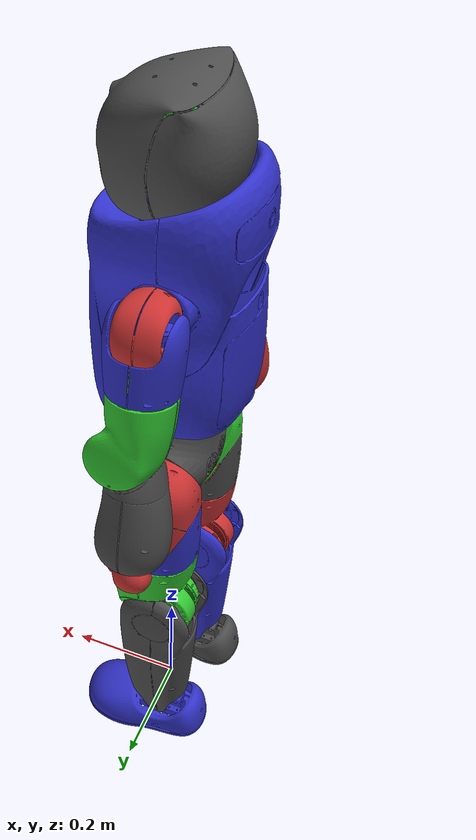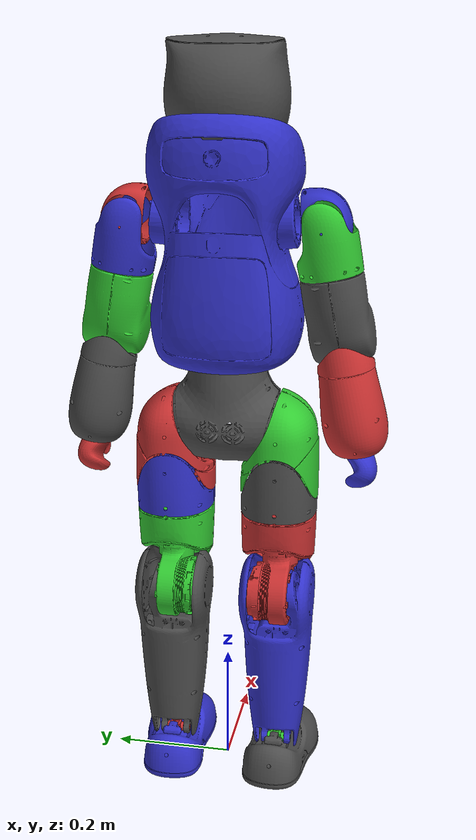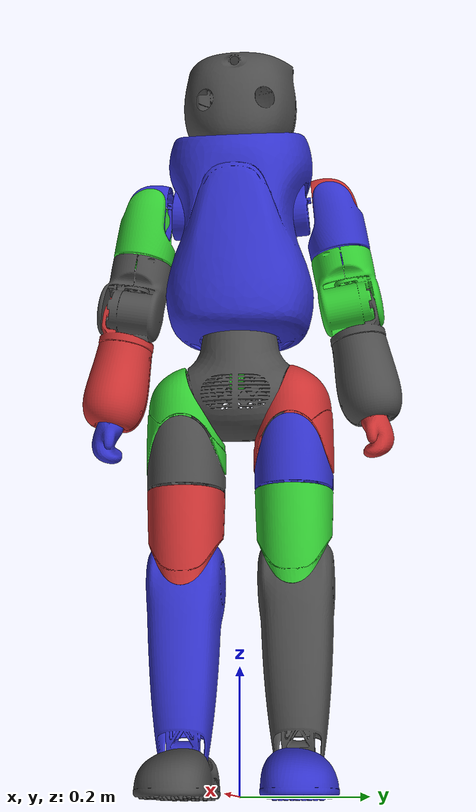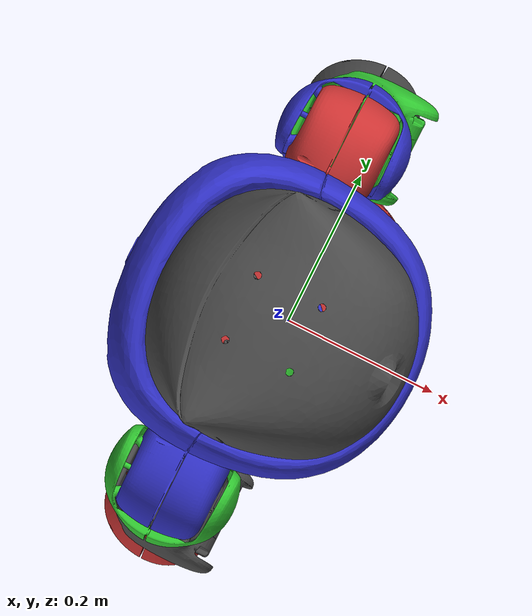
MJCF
<mujoco model="gr3miniv2_1_1">
  <compiler angle="radian" meshdir="assets" autolimits="true" />
  <option iterations="3" ls_iterations="5" timestep=".002" integrator="Euler">
    <flag eulerdamp="disable" />
  </option>
  <default>
    <joint actuatorfrclimited="true" type="hinge" />
    <default class="collision">
      <geom group="3" rgba=".2 .6 .2 .3" contype="0" conaffinity="0" />
    </default>
    <site rgba="1 0 0 1" group="5" />
  </default>
  <asset>
    <mesh name="base_link" file="base_link.STL" scale="0.001 0.001 0.001" />
    <mesh name="waist_yaw_link" file="waist_yaw_link.STL" scale="0.001 0.001 0.001" />
    <mesh name="torso_link" file="torso_link.STL" scale="0.001 0.001 0.001" />
    <mesh name="head_yaw_link" file="head_yaw_link.STL" scale="0.001 0.001 0.001" />
    <mesh name="head_pitch_link" file="head_pitch_link.STL" scale="0.001 0.001 0.001" />
    <mesh name="left_thigh_pitch_link" file="left_thigh_pitch_link.STL" scale="0.001 0.001 0.001" />
    <mesh name="left_thigh_roll_link" file="left_thigh_roll_link.STL" scale="0.001 0.001 0.001" />
    <mesh name="left_thigh_yaw_link" file="left_thigh_yaw_link.STL" scale="0.001 0.001 0.001" />
    <mesh name="left_shank_pitch_link" file="left_shank_pitch_link.STL" scale="0.001 0.001 0.001" />
    <mesh name="left_foot_pitch_link" file="left_foot_pitch_link.STL" scale="0.001 0.001 0.001" />
    <mesh name="left_foot_roll_link" file="left_foot_roll_link.STL" scale="0.001 0.001 0.001" />
    <mesh name="right_thigh_pitch_link" file="right_thigh_pitch_link.STL" scale="0.001 0.001 0.001" />
    <mesh name="right_thigh_roll_link" file="right_thigh_roll_link.STL" scale="0.001 0.001 0.001" />
    <mesh name="right_thigh_yaw_link" file="right_thigh_yaw_link.STL" scale="0.001 0.001 0.001" />
    <mesh name="right_shank_pitch_link" file="right_shank_pitch_link.STL" scale="0.001 0.001 0.001" />
    <mesh name="right_foot_pitch_link" file="right_foot_pitch_link.STL" scale="0.001 0.001 0.001" />
    <mesh name="right_foot_roll_link" file="right_foot_roll_link.STL" scale="0.001 0.001 0.001" />
    <mesh name="left_upper_arm_pitch_link" file="left_upper_arm_pitch_link.STL" scale="0.001 0.001 0.001" />
    <mesh name="left_upper_arm_roll_link" file="left_upper_arm_roll_link.STL" scale="0.001 0.001 0.001" />
    <mesh name="left_upper_arm_yaw_link" file="left_upper_arm_yaw_link.STL" scale="0.001 0.001 0.001" />
    <mesh name="left_lower_arm_pitch_link" file="left_lower_arm_pitch_link.STL" scale="0.001 0.001 0.001" />
    <mesh name="left_hand_yaw_link" file="left_hand_yaw_link.STL" scale="0.001 0.001 0.001" />
    <mesh name="right_upper_arm_pitch_link" file="right_upper_arm_pitch_link.STL" scale="0.001 0.001 0.001" />
    <mesh name="right_upper_arm_roll_link" file="right_upper_arm_roll_link.STL" scale="0.001 0.001 0.001" />
    <mesh name="right_upper_arm_yaw_link" file="right_upper_arm_yaw_link.STL" scale="0.001 0.001 0.001" />
    <mesh name="right_lower_arm_pitch_link" file="right_lower_arm_pitch_link.STL" scale="0.001 0.001 0.001" />
    <mesh name="right_hand_yaw_link" file="right_hand_yaw_link.STL" scale="0.001 0.001 0.001" />
    <mesh name="imu_link" file="imu_link.STL" scale="0.001 0.001 0.001" />
  </asset>
  <worldbody>
    <body name="base_link" pos="0 0 0.625258775">
      <freejoint name="base_free_joint" />
      <inertial pos="-0.000867228 1.14039e-05 0.0349722" quat="1 0.000427677 -0.000730479 0.000498522" mass="4.37052" diaginertia="0.0143364 0.00976865 0.00854089" />
      <geom type="mesh" contype="0" conaffinity="0" group="1" density="0" rgba="0.3 0.3 0.3 1" mesh="base_link" />
      <body name="waist_yaw_link" pos="0 0 0.129241">
        <inertial pos="0.000531023 2.89879e-06 -0.00751643" quat="-0.0686551 0.688193 0.0746872 0.7184" mass="0.594111" diaginertia="0.000356461 0.000262734 0.000258042" />
        <joint name="waist_yaw_joint" pos="0 0 0" axis="0 0 1" range="-2.2689 2.2689" actuatorfrcrange="-140 140" armature="0.029064366" damping="0.01" frictionloss="0.02" />
        <geom type="mesh" contype="0" conaffinity="0" group="1" density="0" rgba="0.8 0.2 0.2 1" mesh="waist_yaw_link" />
        <body name="torso_link">
          <inertial pos="-0.0180476 -0.000320309 0.157121" quat="0.999566 -0.0039106 -0.0290555 -0.00271946" mass="10.9101" diaginertia="0.129645 0.122568 0.0602052" />
          <geom type="mesh" contype="0" conaffinity="0" group="1" density="0" rgba="0.2 0.2 0.8 1" mesh="torso_link" />
          <body name="head_yaw_link" pos="0 0 0.3622">
            <inertial pos="-0.00010016 -0.0059295 0.02893" quat="0.999537 0.0226773 -0.00204875 0.0201909" mass="0.44228" diaginertia="0.000271521 0.000266458 5.00393e-05" />
            <joint name="head_yaw_joint" pos="0 0 0" axis="0 0 1" range="-1.3963 1.3963" actuatorfrcrange="-11 11" armature="0.0489648" damping="0.01" frictionloss="0.02" />
            <geom type="mesh" contype="0" conaffinity="0" group="1" density="0" rgba="0.2 0.8 0.2 1" mesh="head_yaw_link" />
            <body name="head_pitch_link" pos="0 0 0.042">
              <inertial pos="0.014259 -0.0012956 0.0026765" quat="0.657593 0.661463 -0.259684 0.250204" mass="0.924" diaginertia="0.00487114 0.00440671 0.00370606" />
              <joint name="head_pitch_joint" pos="0 0 0" axis="0 1 0" range="-0.5236 0.1745" actuatorfrcrange="-11 11" armature="0.0489648" damping="0.01" frictionloss="0.02" />
              <geom type="mesh" contype="0" conaffinity="0" group="1" density="0" rgba="0.3 0.3 0.3 1" mesh="head_pitch_link" />
              <geom name="head_collision" class="collision" size="0.09" pos="0 0 0.006" />
            </body>
          </body>
          <body name="left_upper_arm_pitch_link" pos="-0.023 0.105 0.212435" quat="0.999048 0.0436194 0 0">
            <inertial pos="-0.00688156 0.0273098 0.00220444" quat="0.666042 0.73023 -0.0415622 0.14637" mass="0.966407" diaginertia="0.00119942 0.00115911 0.000312168" />
            <joint name="left_shoulder_pitch_joint" pos="0 0 0" axis="0 1 0" range="-3.14159 2.70526" actuatorfrcrange="-42 42" armature="0.00884" damping="0.01" frictionloss="0.02" />
            <geom type="mesh" contype="0" conaffinity="0" group="1" density="0" rgba="0.8 0.2 0.2 1" mesh="left_upper_arm_pitch_link" />
            <body name="left_upper_arm_roll_link" pos="0 0.0483541 -0.00852613" quat="0.999048 0.0436194 0 0">
              <inertial pos="-0.0160281 0.000200678 -0.052866" quat="0.720085 0.0526754 0.0749272 0.687815" mass="1.14232" diaginertia="0.00212863 0.00195996 0.000747345" />
              <joint name="left_shoulder_roll_joint" pos="0 0 0" axis="1 0 0" range="-0.0872665 2.35619" actuatorfrcrange="-28.5 28.5" armature="0.003123788" damping="0.01" frictionloss="0.02" />
              <geom type="mesh" contype="0" conaffinity="0" group="1" density="0" rgba="0.2 0.2 0.8 1" mesh="left_upper_arm_roll_link" />
              <body name="left_upper_arm_yaw_link" pos="0 0 -0.127">
                <inertial pos="0.0105288 -0.00451627 -0.0271468" quat="0.97796 -0.0851427 -0.142054 0.127148" mass="1.06309" diaginertia="0.00162194 0.00157577 0.00074561" />
                <joint name="left_shoulder_yaw_joint" pos="0 0 0" axis="0 0 1" range="-1.8326 1.8326" actuatorfrcrange="-28.5 28.5" armature="0.003123788" damping="0.01" frictionloss="0.02" />
                <geom type="mesh" contype="0" conaffinity="0" group="1" density="0" rgba="0.2 0.8 0.2 1" mesh="left_upper_arm_yaw_link" />
                <body name="left_lower_arm_pitch_link" pos="0.02 0 -0.0493">
                  <inertial pos="-0.0144669 0.00433167 -0.0912007" quat="0.996722 -0.048495 0.0647485 -0.000888523" mass="1.24342" diaginertia="0.00530407 0.00521777 0.000853213" />
                  <joint name="left_elbow_pitch_joint" pos="0 0 0" axis="0 1 0" range="-2.18166 0" actuatorfrcrange="-28.5 28.5" armature="0.003123788" damping="0.01" frictionloss="0.02" />
                  <geom type="mesh" contype="0" conaffinity="0" group="1" density="0" rgba="0.3 0.3 0.3 1" mesh="left_lower_arm_pitch_link" />
                  <body name="left_hand_yaw_link" pos="-0.02 0 -0.177">
                    <inertial pos="0.000213645 -3.11586e-05 -0.0226719" quat="0.653884 -0.00530956 0.0129911 0.756464" mass="0.245152" diaginertia="0.000266021 0.000243093 6.85405e-05" />
                    <joint name="left_wrist_yaw_joint" pos="0 0 0" axis="0 0 1" range="-1.48353 1.48353" actuatorfrcrange="-11 11" armature="0.0489648" damping="0.01" frictionloss="0.02" />
                    <geom type="mesh" contype="0" conaffinity="0" group="1" density="0" rgba="0.8 0.2 0.2 1" mesh="left_hand_yaw_link" />
                    <geom name="left_hand_collision" class="collision" type="sphere" size="0.03" pos="0 -0.005 -0.05" />
                  </body>
                  <geom name="left_lower_arm_collision" class="collision" type="capsule" size="0.05" fromto="-0.02599 0.004 -0.1497 -0.01401 0.004 -0.0302998" />
                </body>
                <geom name="left_upper_arm_collision" class="collision" type="capsule" size="0.05" fromto="0 0 -0.01 0 0 0.13" />
              </body>
            </body>
          </body>
          <body name="right_upper_arm_pitch_link" pos="-0.023 -0.105 0.212435" quat="0.999048 -0.0436194 0 0">
            <inertial pos="-0.00688156 -0.0273098 0.00220444" quat="0.73023 0.666042 -0.14637 0.0415622" mass="0.966407" diaginertia="0.00119942 0.00115911 0.000312168" />
            <joint name="right_shoulder_pitch_joint" pos="0 0 0" axis="0 1 0" range="-3.14159 2.70526" actuatorfrcrange="-42 42" armature="0.00884" damping="0.01" frictionloss="0.02" />
            <geom type="mesh" contype="0" conaffinity="0" group="1" density="0" rgba="0.2 0.2 0.8 1" mesh="right_upper_arm_pitch_link" />
            <body name="right_upper_arm_roll_link" pos="0 -0.0483541 -0.00852613" quat="0.999048 -0.0436194 0 0">
              <inertial pos="-0.0160281 -0.000200678 -0.052866" quat="0.687815 0.0749272 0.0526754 0.720085" mass="1.14232" diaginertia="0.00212863 0.00195996 0.000747345" />
              <joint name="right_shoulder_roll_joint" pos="0 0 0" axis="1 0 0" range="-2.3562 0.0872665" actuatorfrcrange="-28.5 28.5" armature="0.003123788" damping="0.01" frictionloss="0.02" />
              <geom type="mesh" contype="0" conaffinity="0" group="1" density="0" rgba="0.2 0.8 0.2 1" mesh="right_upper_arm_roll_link" />
              <body name="right_upper_arm_yaw_link" pos="0 0 -0.127">
                <inertial pos="0.0105288 0.00451627 -0.0271468" quat="0.97796 0.0851427 -0.142054 -0.127148" mass="1.06309" diaginertia="0.00162194 0.00157577 0.00074561" />
                <joint name="right_shoulder_yaw_joint" pos="0 0 0" axis="0 0 1" range="-1.8326 1.8326" actuatorfrcrange="-28.5 28.5" armature="0.003123788" damping="0.01" frictionloss="0.02" />
                <geom type="mesh" contype="0" conaffinity="0" group="1" density="0" rgba="0.3 0.3 0.3 1" mesh="right_upper_arm_yaw_link" />
                <body name="right_lower_arm_pitch_link" pos="0.02 0 -0.0493">
                  <inertial pos="-0.0144669 -0.00433167 -0.0912007" quat="0.996722 0.048495 0.0647485 0.000888523" mass="1.24342" diaginertia="0.00530407 0.00521777 0.000853213" />
                  <joint name="right_elbow_pitch_joint" pos="0 0 0" axis="0 1 0" range="-2.18166 0" actuatorfrcrange="-28.5 28.5" armature="0.003123788" damping="0.01" frictionloss="0.02" />
                  <geom type="mesh" contype="0" conaffinity="0" group="1" density="0" rgba="0.8 0.2 0.2 1" mesh="right_lower_arm_pitch_link" />
                  <body name="right_hand_yaw_link" pos="-0.02 0 -0.177">
                    <inertial pos="0.000213645 3.11586e-05 -0.0226719" quat="0.756464 0.0129911 -0.00530956 0.653884" mass="0.245152" diaginertia="0.000266021 0.000243093 6.85405e-05" />
                    <joint name="right_wrist_yaw_joint" pos="0 0 0" axis="0 0 1" range="-1.48353 1.48353" actuatorfrcrange="-11 11" armature="0.0489648" damping="0.01" frictionloss="0.02" />
                    <geom type="mesh" contype="0" conaffinity="0" group="1" density="0" rgba="0.2 0.2 0.8 1" mesh="right_hand_yaw_link" />
                    <geom name="right_hand_collision" class="collision" type="sphere" size="0.03" pos="0 0.005 -0.05" />
                  </body>
                  <geom name="right_lower_arm_collision" class="collision" type="capsule" size="0.05" fromto="-0.02599 -0.004 -0.1497 -0.01401 -0.004 -0.0302998" />
                </body>
                <geom name="right_upper_arm_collision" class="collision" type="capsule" size="0.05" fromto="0 0 -0.01 0 0 0.13" />
              </body>
            </body>
          </body>
          <site name="imu_in_torso" size="0.01" pos="-0.018 0 0.157" />
          <geom name="torso" class="collision" type="capsule" size="0.1" fromto="-0.02 0 0.04 -0.02 0 0.33" />
        </body>
      </body>
      <body name="left_thigh_pitch_link" pos="0 0.0740341 0" quat="0.991445 -0.130526 0 0">
        <inertial pos="-0.0054163 0.0212012 -0.0399399" quat="0.975286 0.206055 0.0617974 0.0503967" mass="1.51747" diaginertia="0.00414148 0.00402042 0.00147904" />
        <joint name="left_hip_pitch_joint" pos="0 0 0" axis="0 1 0" range="-2.2689 2.0944" actuatorfrcrange="-140 140" armature="0.029064366" damping="0.01" frictionloss="0.02" />
        <geom type="mesh" contype="0" conaffinity="0" group="1" density="0" rgba="0.8 0.2 0.2 1" mesh="left_thigh_pitch_link" />
        <body name="left_thigh_roll_link" pos="0 0.0387826 -0.083051" quat="0.991445 0.130526 0 0">
          <inertial pos="0.00202271 -0.000719186 -0.0339469" quat="0.711997 0.0329396 0.0311435 0.700718" mass="1.05351" diaginertia="0.00214454 0.00171016 0.00131836" />
          <joint name="left_hip_roll_joint" pos="0 0 0" axis="1 0 0" range="-0.226892 1.44862" actuatorfrcrange="-42 42" armature="0.00884" damping="0.01" frictionloss="0.02" />
          <geom type="mesh" contype="0" conaffinity="0" group="1" density="0" rgba="0.2 0.2 0.8 1" mesh="left_thigh_roll_link" />
          <body name="left_thigh_yaw_link" pos="0 0 -0.0626">
            <inertial pos="-0.010874 -0.00975888 -0.0944827" quat="0.653061 0.0271388 0.132427 0.745143" mass="2.29309" diaginertia="0.00714942 0.00685758 0.00163747" />
            <joint name="left_hip_yaw_joint" pos="0 0 0" axis="0 0 1" range="-1.91986 1.9199" actuatorfrcrange="-42 42" armature="0.00884" damping="0.01" frictionloss="0.02" />
            <geom type="mesh" contype="0" conaffinity="0" group="1" density="0" rgba="0.2 0.8 0.2 1" mesh="left_thigh_yaw_link" />
            <body name="left_shank_pitch_link" pos="-0.0224 0 -0.1374">
              <inertial pos="0.0156249 0.00195118 -0.106721" quat="0.746208 -0.0224383 -0.00072601 0.665334" mass="3.10165" diaginertia="0.0187816 0.018297 0.00313395" />
              <joint name="left_knee_pitch_joint" pos="0 0 0" axis="0 1 0" range="0 2.05948" actuatorfrcrange="-140 140" armature="0.029064366" damping="0.01" frictionloss="0.02" />
              <geom type="mesh" contype="0" conaffinity="0" group="1" density="0" rgba="0.3 0.3 0.3 1" mesh="left_shank_pitch_link" />
              <body name="left_foot_pitch_link" pos="0 0 -0.28">
                <inertial pos="0 -0.000114683 1.07484e-07" quat="0.500569 0.500476 -0.499524 0.499431" mass="0.0912416" diaginertia="1.29623e-05 9.91465e-06 7.54464e-06" />
                <joint name="left_ankle_pitch_joint" pos="0 0 0" axis="0 1 0" range="-0.785398 0.523598" actuatorfrcrange="-52 52" armature="0.01324486112" damping="0.01" frictionloss="0.02" />
                <geom type="mesh" contype="0" conaffinity="0" group="1" density="0" rgba="0.8 0.2 0.2 1" mesh="left_foot_pitch_link" />
                <body name="left_foot_roll_link">
                  <inertial pos="0.0319974 0.0024264 -0.0336057" quat="-0.00804426 0.716075 0.0206118 0.697673" mass="0.79587" diaginertia="0.00396207 0.0035585 0.000919042" />
                  <joint name="left_ankle_roll_joint" pos="0 0 0" axis="1 0 0" range="-0.3491 0.349065" actuatorfrcrange="-25 25" armature="0.00649747904" damping="0.01" frictionloss="0.02" />
                  <geom type="mesh" contype="0" conaffinity="0" group="1" density="0" rgba="0.2 0.2 0.8 1" mesh="left_foot_roll_link" />
                  <site name="left_foot" size="0.01" pos="0.032 0 -0.032" />
                  <geom name="left_foot" class="collision" type="box" size="0.1 0.045 0.01" pos="0.03 0 -0.045" />
                </body>
              </body>
              <geom name="left_shin" class="collision" type="capsule" size="0.055" fromto="-2.38823e-07 0 -0.045 2.38823e-07 0 -0.225" />
            </body>
            <geom name="left_thigh" class="collision" type="capsule" size="0.065" fromto="-1.99019e-07 0 0.065 1.99019e-07 0 -0.085" />
          </body>
        </body>
      </body>
      <body name="right_thigh_pitch_link" pos="0 -0.0740341 0" quat="0.991445 0.130526 0 0">
        <inertial pos="-0.0054163 -0.0212012 -0.0399399" quat="0.975286 -0.206055 0.0617974 -0.0503967" mass="1.51747" diaginertia="0.00414148 0.00402042 0.00147904" />
        <joint name="right_hip_pitch_joint" pos="0 0 0" axis="0 1 0" range="-2.2689 2.0944" actuatorfrcrange="-140 140" armature="0.029064366" damping="0.01" frictionloss="0.02" />
        <geom type="mesh" contype="0" conaffinity="0" group="1" density="0" rgba="0.2 0.8 0.2 1" mesh="right_thigh_pitch_link" />
        <body name="right_thigh_roll_link" pos="0 -0.0387826 -0.083051" quat="0.991445 -0.130526 0 0">
          <inertial pos="0.00202271 0.000719186 -0.0339469" quat="0.700718 0.0311435 0.0329396 0.711997" mass="1.05351" diaginertia="0.00214454 0.00171016 0.00131836" />
          <joint name="right_hip_roll_joint" pos="0 0 0" axis="1 0 0" range="-1.44862 0.226892" actuatorfrcrange="-42 42" armature="0.00884" damping="0.01" frictionloss="0.02" />
          <geom type="mesh" contype="0" conaffinity="0" group="1" density="0" rgba="0.3 0.3 0.3 1" mesh="right_thigh_roll_link" />
          <body name="right_thigh_yaw_link" pos="0 0 -0.0626">
            <inertial pos="-0.0109015 0.00977437 -0.0945842" quat="0.752272 0.13365 0.0293302 0.644488" mass="2.2923" diaginertia="0.00716822 0.00687668 0.00163542" />
            <joint name="right_hip_yaw_joint" pos="0 0 0" axis="0 0 1" range="-1.9199 1.9199" actuatorfrcrange="-42 42" armature="0.00884" damping="0.01" frictionloss="0.02" />
            <geom type="mesh" contype="0" conaffinity="0" group="1" density="0" rgba="0.8 0.2 0.2 1" mesh="right_thigh_yaw_link" />
            <body name="right_shank_pitch_link" pos="-0.0224 0 -0.1374">
              <inertial pos="0.0156249 0.00195118 -0.106721" quat="0.665334 -0.00072601 -0.0224383 0.746208" mass="3.10165" diaginertia="0.0187816 0.018297 0.00313395" />
              <joint name="right_knee_pitch_joint" pos="0 0 0" axis="0 1 0" range="0 2.05948" actuatorfrcrange="-140 140" armature="0.029064366" damping="0.01" frictionloss="0.02" />
              <geom type="mesh" contype="0" conaffinity="0" group="1" density="0" rgba="0.2 0.2 0.8 1" mesh="right_shank_pitch_link" />
              <body name="right_foot_pitch_link" pos="0 0 -0.28">
                <inertial pos="0 0.000114683 1.07484e-07" quat="0.500476 0.500569 -0.499431 0.499524" mass="0.0912416" diaginertia="1.29623e-05 9.91465e-06 7.54464e-06" />
                <joint name="right_ankle_pitch_joint" pos="0 0 0" axis="0 1 0" range="-0.785398 0.523598" actuatorfrcrange="-52 52" armature="0.01324486112" damping="0.01" frictionloss="0.02" />
                <geom type="mesh" contype="0" conaffinity="0" group="1" density="0" rgba="0.2 0.8 0.2 1" mesh="right_foot_pitch_link" />
                <body name="right_foot_roll_link">
                  <inertial pos="0.0319974 -0.0024264 -0.0336057" quat="0.00804426 0.716075 -0.0206118 0.697673" mass="0.79587" diaginertia="0.00396207 0.0035585 0.000919042" />
                  <joint name="right_ankle_roll_joint" pos="0 0 0" axis="1 0 0" range="-0.3491 0.349065" actuatorfrcrange="-25 25" armature="0.00649747904" damping="0.01" frictionloss="0.02" />
                  <geom type="mesh" contype="0" conaffinity="0" group="1" density="0" rgba="0.3 0.3 0.3 1" mesh="right_foot_roll_link" />
                  <site name="right_foot" size="0.01" pos="0.032 0 -0.032" />
                  <geom name="right_foot" class="collision" type="box" size="0.1 0.045 0.01" pos="0.03 0 -0.045" />
                </body>
              </body>
              <geom name="right_shin" class="collision" type="capsule" size="0.055" fromto="-2.38823e-07 0 -0.045 2.38823e-07 0 -0.225" />
            </body>
            <geom name="right_thigh" class="collision" type="capsule" size="0.065" fromto="-1.99019e-07 0 0.065 1.99019e-07 0 -0.085" />
          </body>
        </body>
      </body>
      <body name="imu_link">
        <inertial pos="0.0499349 0 0.0340037" quat="0.986929 -4.81514e-05 0.161157 -6.64892e-05" mass="0.0283726" diaginertia="8.59514e-06 7.43243e-06 2.33142e-06" />
        <geom type="mesh" contype="0" conaffinity="0" group="1" density="0" rgba="0.2 0.8 0.2 1" mesh="imu_link" />
      </body>
      <site name="imu_in_base" size="0.01" pos="0.0499349 0 0.0340037" />
      <geom name="pelvis_collision" class="collision" type="capsule" size="0.07" fromto="0 0.075 -5.97245e-05 0 -0.075 5.97245e-05" contype="1" conaffinity="0" />
    </body>
  </worldbody>
  <contact>
    <pair name="left_foot_floor" geom1="left_foot" geom2="floor" condim="3" friction="0.6 0.6" />
    <pair name="right_foot_floor" geom1="right_foot" geom2="floor" condim="3" friction="0.6 0.6" />
    <pair name="left_shin_floor" geom1="left_shin" geom2="floor" condim="3" friction="0.6 0.6" />
    <pair name="right_shin_floor" geom1="right_shin" geom2="floor" condim="3" friction="0.6 0.6" />
    <pair name="left_hand_floor" geom1="left_hand_collision" geom2="floor" condim="3" friction="0.6 0.6" />
    <pair name="right_hand_floor" geom1="right_hand_collision" geom2="floor" condim="3" friction="0.6 0.6" />
    <pair name="left_upper_arm_floor" geom1="left_upper_arm_collision" geom2="floor" condim="3" friction="0.6 0.6" />
    <pair name="right_upper_arm_floor" geom1="right_upper_arm_collision" geom2="floor" condim="3" friction="0.6 0.6" />
    <pair name="left_lower_arm_floor" geom1="left_lower_arm_collision" geom2="floor" condim="3" friction="0.6 0.6" />
    <pair name="right_lower_arm_floor" geom1="right_lower_arm_collision" geom2="floor" condim="3" friction="0.6 0.6" />
    <pair name="pelvis_floor" geom1="pelvis_collision" geom2="floor" condim="3" friction="0.6 0.6" />
    <pair name="torso_floor" geom1="torso" geom2="floor" condim="3" friction="0.6 0.6" />
    <pair name="left_hand_thigh" geom1="left_hand_collision" geom2="left_thigh" condim="1" />
    <pair name="right_hand_thigh" geom1="right_hand_collision" geom2="right_thigh" condim="1" />
    <pair name="left_foot_right_foot" geom1="left_foot" geom2="right_foot" condim="1" />
    <pair name="left_foot_right_shin" geom1="left_foot" geom2="right_shin" condim="1" />
    <pair name="left_foot_right_thigh" geom1="left_foot" geom2="right_thigh" condim="1" />
    <pair name="right_foot_left_shin" geom1="right_foot" geom2="left_shin" condim="1" />
    <pair name="right_foot_left_thigh" geom1="right_foot" geom2="left_thigh" condim="1" />
    <pair name="left_shin_right_shin" geom1="left_shin" geom2="right_shin" condim="1" />
    <pair name="left_shin_right_thigh" geom1="left_shin" geom2="right_thigh" condim="1" />
    <pair name="right_shin_left_thigh" geom1="right_shin" geom2="left_thigh" condim="1" />
    <pair name="left_thigh_right_thigh" geom1="left_thigh" geom2="right_thigh" condim="1" />
    <pair name="left_hand_right_hand" geom1="left_hand_collision" geom2="right_hand_collision" condim="1" />
    <pair name="right_hand_torso" geom1="right_hand_collision" geom2="torso" condim="1" />
    <pair name="left_hand_torso" geom1="left_hand_collision" geom2="torso" condim="1" />
    <pair name="right_upper_arm_torso" geom1="right_upper_arm_collision" geom2="torso" condim="1" />
    <pair name="left_upper_arm_torso" geom1="left_upper_arm_collision" geom2="torso" condim="1" />
    <pair name="right_lower_arm_torso" geom1="right_lower_arm_collision" geom2="torso" condim="1" />
    <pair name="left_lower_arm_torso" geom1="left_lower_arm_collision" geom2="torso" condim="1" />
    <pair name="right_hand_pelvis" geom1="right_hand_collision" geom2="pelvis_collision" condim="1" />
    <pair name="left_hand_pelvis" geom1="left_hand_collision" geom2="pelvis_collision" condim="1" />
    <pair name="right_upper_arm_pelvis" geom1="right_upper_arm_collision" geom2="pelvis_collision" condim="1" />
    <pair name="left_upper_arm_pelvis" geom1="left_upper_arm_collision" geom2="pelvis_collision" condim="1" />
    <pair name="right_lower_arm_pelvis" geom1="right_lower_arm_collision" geom2="pelvis_collision" condim="1" />
    <pair name="left_lower_arm_pelvis" geom1="left_lower_arm_collision" geom2="pelvis_collision" condim="1" />
    <pair name="right_hand_head" geom1="right_hand_collision" geom2="head_collision" condim="1" />
    <pair name="left_hand_head" geom1="left_hand_collision" geom2="head_collision" condim="1" />
    <pair name="right_upper_arm_head" geom1="right_upper_arm_collision" geom2="head_collision" condim="1" />
    <pair name="left_upper_arm_head" geom1="left_upper_arm_collision" geom2="head_collision" condim="1" />
    <pair name="right_lower_arm_head" geom1="right_lower_arm_collision" geom2="head_collision" condim="1" />
    <pair name="left_lower_arm_head" geom1="left_lower_arm_collision" geom2="head_collision" condim="1" />
  </contact>
  <actuator>
    <motor name="waist_yaw_joint" joint="waist_yaw_joint" ctrlrange="-140 140" />
    <motor name="head_yaw_joint" joint="head_yaw_joint" ctrlrange="-11 11" />
    <motor name="head_pitch_joint" joint="head_pitch_joint" ctrlrange="-11 11" />
    <motor name="left_shoulder_pitch_joint" joint="left_shoulder_pitch_joint" ctrlrange="-42 42" />
    <motor name="left_shoulder_roll_joint" joint="left_shoulder_roll_joint" ctrlrange="-28.5 28.5" />
    <motor name="left_shoulder_yaw_joint" joint="left_shoulder_yaw_joint" ctrlrange="-28.5 28.5" />
    <motor name="left_elbow_pitch_joint" joint="left_elbow_pitch_joint" ctrlrange="-28.5 28.5" />
    <motor name="left_wrist_yaw_joint" joint="left_wrist_yaw_joint" ctrlrange="-11 11" />
    <motor name="right_shoulder_pitch_joint" joint="right_shoulder_pitch_joint" ctrlrange="-42 42" />
    <motor name="right_shoulder_roll_joint" joint="right_shoulder_roll_joint" ctrlrange="-28.5 28.5" />
    <motor name="right_shoulder_yaw_joint" joint="right_shoulder_yaw_joint" ctrlrange="-28.5 28.5" />
    <motor name="right_elbow_pitch_joint" joint="right_elbow_pitch_joint" ctrlrange="-28.5 28.5" />
    <motor name="right_wrist_yaw_joint" joint="right_wrist_yaw_joint" ctrlrange="-11 11" />
    <motor name="left_hip_pitch_joint" joint="left_hip_pitch_joint" ctrlrange="-140 140" />
    <motor name="left_hip_roll_joint" joint="left_hip_roll_joint" ctrlrange="-42 42" />
    <motor name="left_hip_yaw_joint" joint="left_hip_yaw_joint" ctrlrange="-42 42" />
    <motor name="left_knee_pitch_joint" joint="left_knee_pitch_joint" ctrlrange="-140 140" />
    <motor name="left_ankle_pitch_joint" joint="left_ankle_pitch_joint" ctrlrange="-52 52" />
    <motor name="left_ankle_roll_joint" joint="left_ankle_roll_joint" ctrlrange="-25 25" />
    <motor name="right_hip_pitch_joint" joint="right_hip_pitch_joint" ctrlrange="-140 140" />
    <motor name="right_hip_roll_joint" joint="right_hip_roll_joint" ctrlrange="-42 42" />
    <motor name="right_hip_yaw_joint" joint="right_hip_yaw_joint" ctrlrange="-42 42" />
    <motor name="right_knee_pitch_joint" joint="right_knee_pitch_joint" ctrlrange="-140 140" />
    <motor name="right_ankle_pitch_joint" joint="right_ankle_pitch_joint" ctrlrange="-52 52" />
    <motor name="right_ankle_roll_joint" joint="right_ankle_roll_joint" ctrlrange="-25 25" />
  </actuator>
  <sensor>
    <gyro name="imu_ang_vel" site="imu_in_base" />
    <velocimeter name="imu_lin_vel" site="imu_in_base" />
    <accelerometer name="imu_lin_acc" site="imu_in_base" />
    <subtreeangmom name="root_angmom" body="base_link" />
  </sensor>
  <statistic center="0 0 0.65" extent="1.3" />
</mujoco>
